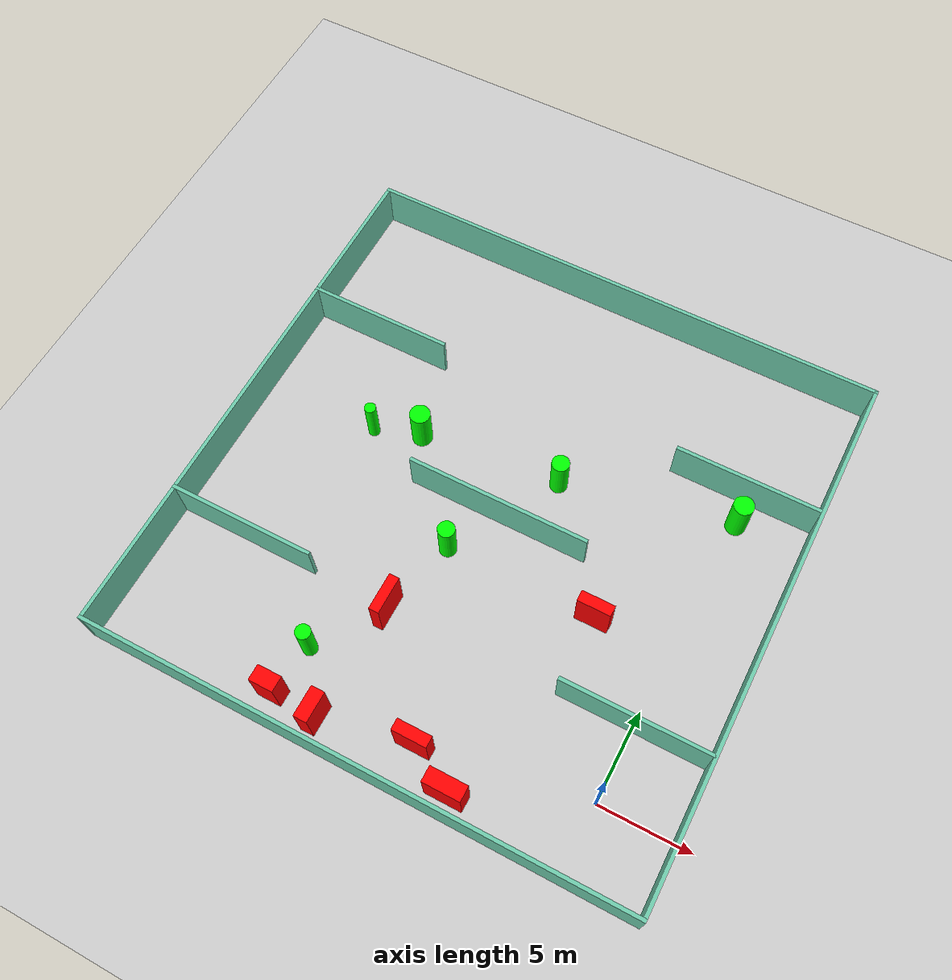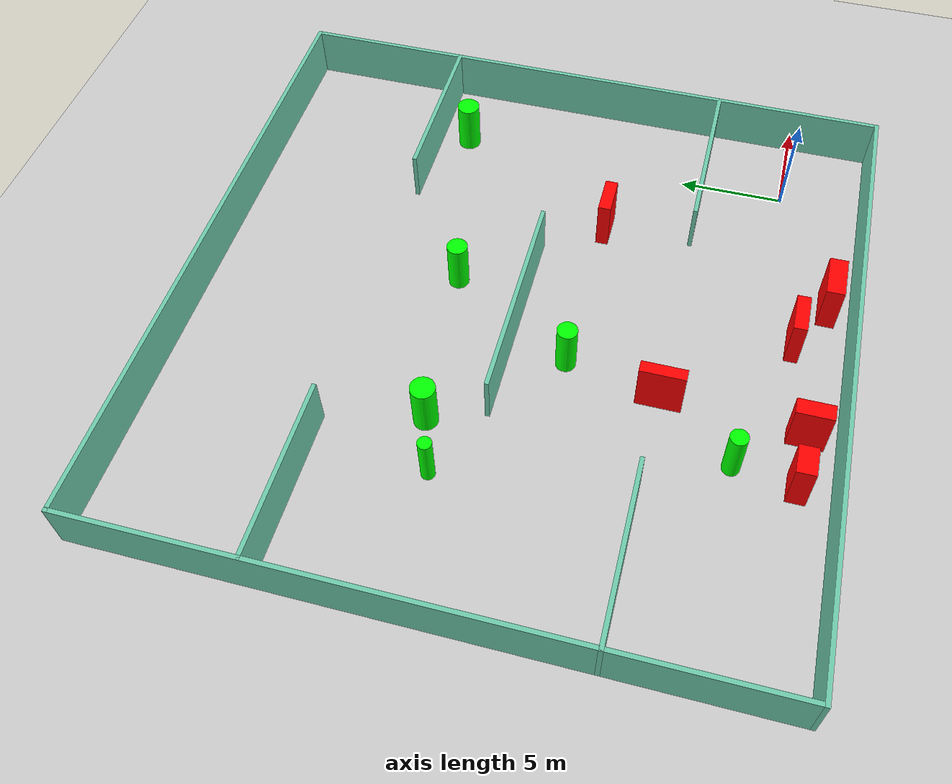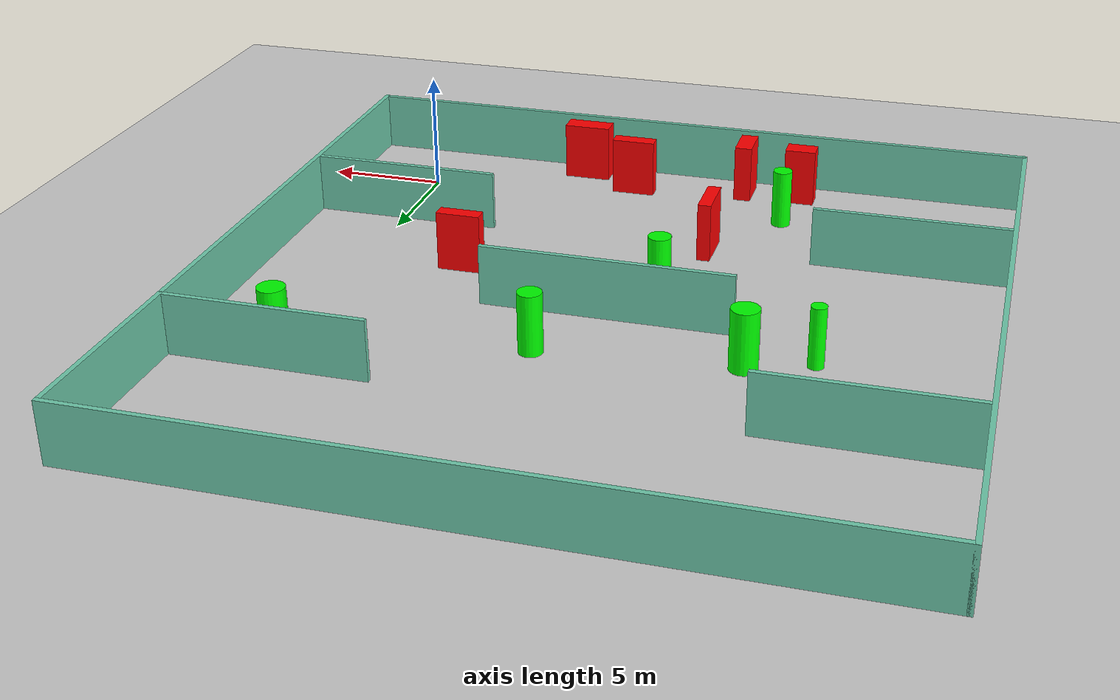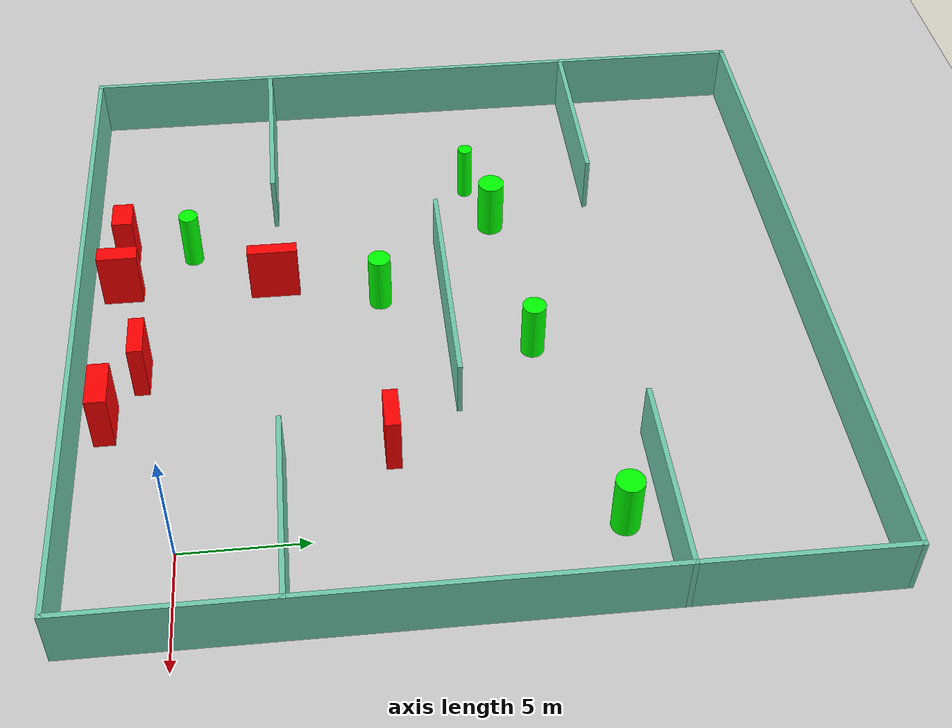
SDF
<sdf version="1.7">
 <world name="default">
  <light name="sun" type="directional">
   <pose>0 0 10 0 -0 0</pose>
   <diffuse>0.8 0.8 0.8 1</diffuse>
   <specular>0.2 0.2 0.2 1</specular>
   <attenuation>
    <range>1000</range>
    <constant>0.9</constant>
    <linear>0.01</linear>
    <quadratic>0.001</quadratic>
   </attenuation>
   <direction>-0.5 0.1 -0.9</direction>
   <spot><inner_angle>0</inner_angle><outer_angle>0</outer_angle><falloff>0</falloff></spot>
  </light>
  <model name="ground_plane">
   <static>1</static>
   <link name="link">
    <collision name="collision">
     <geometry><plane><normal>0 0 1</normal><size>100 100</size></plane></geometry>
     <surface>
      <contact><collide_bitmask>65535</collide_bitmask></contact>
      <friction><ode><mu>100</mu><mu2>50</mu2></ode></friction>
     </surface>
    </collision>
    <visual name="visual">
     <cast_shadows>0</cast_shadows>
     <geometry><plane><normal>0 0 1</normal><size>100 100</size></plane></geometry>
     <material>
      <script><uri>file://media/materials/scripts/gazebo.material</uri><name>Gazebo/Grey</name></script>
     </material>
    </visual>
   </link>
  </model>
  <gravity>0 0 -9.8</gravity>
  <magnetic_field>6e-06 2.3e-05 -4.2e-05</magnetic_field>
  <atmosphere type="adiabatic"/>
  <physics type="ode">
   <max_step_size>0.001</max_step_size>
   <real_time_factor>1</real_time_factor>
   <real_time_update_rate>1000</real_time_update_rate>
  </physics>
  <scene><ambient>0.4 0.4 0.4 1</ambient><background>0.7 0.7 0.7 1</background><shadows>1</shadows></scene>
  <spherical_coordinates>
   <surface_model>EARTH_WGS84</surface_model>
   <latitude_deg>0</latitude_deg>
   <longitude_deg>0</longitude_deg>
   <elevation>0</elevation>
   <heading_deg>0</heading_deg>
  </spherical_coordinates>
  <model name="my_base_walls">
   <link name="Wall_10">
    <collision name="Wall_10_Collision">
     <geometry><box><size>8.2 0.2 2.5</size></box></geometry>
     <pose>0 0 1.25 0 -0 0</pose>
    </collision>
    <visual name="Wall_10_Visual">
     <pose>0 0 1.25 0 -0 0</pose>
     <geometry><box><size>8.2 0.2 2.5</size></box></geometry>
     <material>
      <script><uri>file://media/materials/scripts/gazebo.material</uri><name>Gazebo/Grey</name></script>
      <ambient>0.435294 0.796078 0.67451 1</ambient>
     </material>
     <meta><layer>0</layer></meta>
    </visual>
    <pose>-11 -7 0 0 -0 0</pose>
   </link>
   <link name="Wall_12">
    <collision name="Wall_12_Collision">
     <geometry><box><size>8.2 0.2 2.5</size></box></geometry>
     <pose>0 0 1.25 0 -0 0</pose>
    </collision>
    <visual name="Wall_12_Visual">
     <pose>0 0 1.25 0 -0 0</pose>
     <geometry><box><size>8.2 0.2 2.5</size></box></geometry>
     <material>
      <script><uri>file://media/materials/scripts/gazebo.material</uri><name>Gazebo/Grey</name></script>
      <ambient>0.435294 0.796078 0.67451 1</ambient>
     </material>
     <meta><layer>0</layer></meta>
    </visual>
    <pose>-11 7 0 0 -0 0</pose>
   </link>
   <link name="Wall_14">
    <collision name="Wall_14_Collision">
     <geometry><box><size>8.2 0.2 2.5</size></box></geometry>
     <pose>0 0 1.25 0 -0 0</pose>
    </collision>
    <visual name="Wall_14_Visual">
     <pose>0 0 1.25 0 -0 0</pose>
     <geometry><box><size>8.2 0.2 2.5</size></box></geometry>
     <material>
      <script><uri>file://media/materials/scripts/gazebo.material</uri><name>Gazebo/Grey</name></script>
      <ambient>0.435294 0.796078 0.67451 1</ambient>
     </material>
     <meta><layer>0</layer></meta>
    </visual>
    <pose>11 7 0 0 -0 3.14159</pose>
   </link>
   <link name="Wall_16">
    <collision name="Wall_16_Collision">
     <geometry><box><size>10.2 0.2 2.5</size></box></geometry>
     <pose>0 0 1.25 0 -0 0</pose>
    </collision>
    <visual name="Wall_16_Visual">
     <pose>0 0 1.25 0 -0 0</pose>
     <geometry><box><size>10.2 0.2 2.5</size></box></geometry>
     <material>
      <script><uri>file://media/materials/scripts/gazebo.material</uri><name>Gazebo/Grey</name></script>
      <ambient>0.435294 0.796078 0.67451 1</ambient>
     </material>
     <meta><layer>0</layer></meta>
    </visual>
    <pose>0 0 0 0 -0 3.14159</pose>
   </link>
   <link name="Wall_2">
    <collision name="Wall_2_Collision">
     <geometry><box><size>30.2 0.2 2.5</size></box></geometry>
     <pose>0 0 1.25 0 -0 0</pose>
    </collision>
    <visual name="Wall_2_Visual">
     <pose>0 0 1.25 0 -0 0</pose>
     <geometry><box><size>30.2 0.2 2.5</size></box></geometry>
     <material>
      <script><uri>file://media/materials/scripts/gazebo.material</uri><name>Gazebo/Grey</name></script>
      <ambient>0.435294 0.796078 0.67451 1</ambient>
     </material>
     <meta><layer>0</layer></meta>
    </visual>
    <pose>0 -15 0 0 -0 3.14159</pose>
   </link>
   <link name="Wall_3">
    <collision name="Wall_3_Collision">
     <geometry><box><size>30.2 0.2 2.5</size></box></geometry>
     <pose>0 0 1.25 0 -0 0</pose>
    </collision>
    <visual name="Wall_3_Visual">
     <pose>0 0 1.25 0 -0 0</pose>
     <geometry><box><size>30.2 0.2 2.5</size></box></geometry>
     <material>
      <script><uri>file://media/materials/scripts/gazebo.material</uri><name>Gazebo/Grey</name></script>
      <ambient>0.435294 0.796078 0.67451 1</ambient>
     </material>
     <meta><layer>0</layer></meta>
    </visual>
    <pose>-15 0 0 0 -0 1.5708</pose>
   </link>
   <link name="Wall_4">
    <collision name="Wall_4_Collision">
     <geometry><box><size>30.2 0.2 2.5</size></box></geometry>
     <pose>0 0 1.25 0 -0 0</pose>
    </collision>
    <visual name="Wall_4_Visual">
     <pose>0 0 1.25 0 -0 0</pose>
     <geometry><box><size>30.2 0.2 2.5</size></box></geometry>
     <material>
      <script><uri>file://media/materials/scripts/gazebo.material</uri><name>Gazebo/Grey</name></script>
      <ambient>0.435294 0.796078 0.67451 1</ambient>
     </material>
     <meta><layer>0</layer></meta>
    </visual>
    <pose>0 15 0 0 -0 0</pose>
   </link>
   <link name="Wall_6">
    <collision name="Wall_6_Collision">
     <geometry><box><size>30.2 0.2 2.5</size></box></geometry>
     <pose>0 0 1.25 0 -0 0</pose>
    </collision>
    <visual name="Wall_6_Visual">
     <pose>0 0 1.25 0 -0 0</pose>
     <geometry><box><size>30.2 0.2 2.5</size></box></geometry>
     <material>
      <script><uri>file://media/materials/scripts/gazebo.material</uri><name>Gazebo/Grey</name></script>
      <ambient>0.435294 0.796078 0.67451 1</ambient>
     </material>
     <meta><layer>0</layer></meta>
    </visual>
    <pose>15 0 0 0 -0 1.5708</pose>
   </link>
   <link name="Wall_8">
    <collision name="Wall_8_Collision">
     <geometry><box><size>8.2 0.2 2.5</size></box></geometry>
     <pose>0 0 1.25 0 -0 0</pose>
    </collision>
    <visual name="Wall_8_Visual">
     <pose>0 0 1.25 0 -0 0</pose>
     <geometry><box><size>8.2 0.2 2.5</size></box></geometry>
     <material>
      <script><uri>file://media/materials/scripts/gazebo.material</uri><name>Gazebo/Grey</name></script>
      <ambient>0.435294 0.796078 0.67451 1</ambient>
     </material>
     <meta><layer>0</layer></meta>
    </visual>
    <pose>11 -7 0 0 -0 3.14159</pose>
   </link>
   <static>1</static>
   <pose>-11 11 0 0 -0 0</pose>
  </model>
  <model name="cylinder1">
   <static>1</static>
   <link name="link">
    <inertial>
     <mass>1</mass>
     <inertia><ixx>0.5</ixx><ixy>0</ixy><ixz>0</ixz><iyy>0.5</iyy><iyz>0</iyz><izz>1</izz></inertia>
    </inertial>
    <collision name="collision">
     <geometry><cylinder><radius>0.5615545492904462</radius><length>2.5</length></cylinder></geometry>
    </collision>
    <visual name="visual">
     <geometry><cylinder><radius>0.5615545492904462</radius><length>2.5</length></cylinder></geometry>
     <material>
      <ambient>0 1 0 1</ambient>
      <diffuse>0 1 0 1</diffuse>
      <specular>0.1 0.1 0.1 1</specular>
      <emissive>0 0 0 0</emissive>
     </material>
    </visual>
   </link>
   <pose>-16.945231135816613 13.540799059531636 1.25 0 0 0</pose>
  </model>
  <model name="cylinder2">
   <static>1</static>
   <link name="link">
    <inertial>
     <mass>1</mass>
     <inertia><ixx>0.5</ixx><ixy>0</ixy><ixz>0</ixz><iyy>0.5</iyy><iyz>0</iyz><izz>1</izz></inertia>
    </inertial>
    <collision name="collision">
     <geometry><cylinder><radius>0.4065628797259667</radius><length>2.5</length></cylinder></geometry>
    </collision>
    <visual name="visual">
     <geometry><cylinder><radius>0.4065628797259667</radius><length>2.5</length></cylinder></geometry>
     <material>
      <ambient>0 1 0 1</ambient>
      <diffuse>0 1 0 1</diffuse>
      <specular>0.1 0.1 0.1 1</specular>
      <emissive>0 0 0 0</emissive>
     </material>
    </visual>
   </link>
   <pose>-16.024538373581684 0.3513216127595493 1.25 0 0 0</pose>
  </model>
  <model name="cylinder3">
   <static>1</static>
   <link name="link">
    <inertial>
     <mass>1</mass>
     <inertia><ixx>0.5</ixx><ixy>0</ixy><ixz>0</ixz><iyy>0.5</iyy><iyz>0</iyz><izz>1</izz></inertia>
    </inertial>
    <collision name="collision">
     <geometry><cylinder><radius>0.4848082042656221</radius><length>2.5</length></cylinder></geometry>
    </collision>
    <visual name="visual">
     <geometry><cylinder><radius>0.4848082042656221</radius><length>2.5</length></cylinder></geometry>
     <material>
      <ambient>0 1 0 1</ambient>
      <diffuse>0 1 0 1</diffuse>
      <specular>0.1 0.1 0.1 1</specular>
      <emissive>0 0 0 0</emissive>
     </material>
    </visual>
   </link>
   <pose>-9.04425379225587 14.343044450150959 1.25 0 0 0</pose>
  </model>
  <model name="cylinder4">
   <static>1</static>
   <link name="link">
    <inertial>
     <mass>1</mass>
     <inertia><ixx>0.5</ixx><ixy>0</ixy><ixz>0</ixz><iyy>0.5</iyy><iyz>0</iyz><izz>1</izz></inertia>
    </inertial>
    <collision name="collision">
     <geometry><cylinder><radius>0.47062665699786954</radius><length>2.5</length></cylinder></geometry>
    </collision>
    <visual name="visual">
     <geometry><cylinder><radius>0.47062665699786954</radius><length>2.5</length></cylinder></geometry>
     <material>
      <ambient>0 1 0 1</ambient>
      <diffuse>0 1 0 1</diffuse>
      <specular>0.1 0.1 0.1 1</specular>
      <emissive>0 0 0 0</emissive>
     </material>
    </visual>
   </link>
   <pose>-12.501130467358418 8.319314031813217 1.25 0 0 0</pose>
  </model>
  <model name="cylinder5">
   <static>1</static>
   <link name="link">
    <inertial>
     <mass>1</mass>
     <inertia><ixx>0.5</ixx><ixy>0</ixy><ixz>0</ixz><iyy>0.5</iyy><iyz>0</iyz><izz>1</izz></inertia>
    </inertial>
    <collision name="collision">
     <geometry><cylinder><radius>0.5514468145064675</radius><length>2.5</length></cylinder></geometry>
    </collision>
    <visual name="visual">
     <geometry><cylinder><radius>0.5514468145064675</radius><length>2.5</length></cylinder></geometry>
     <material>
      <ambient>0 1 0 1</ambient>
      <diffuse>0 1 0 1</diffuse>
      <specular>0.1 0.1 0.1 1</specular>
      <emissive>0 0 0 0</emissive>
     </material>
    </visual>
   </link>
   <pose>0.2847691070978726 16.472004631570215 1.25 0 0 0</pose>
  </model>
  <model name="cylinder6">
   <static>1</static>
   <link name="link">
    <inertial>
     <mass>1</mass>
     <inertia><ixx>0.5</ixx><ixy>0</ixy><ixz>0</ixz><iyy>0.5</iyy><iyz>0</iyz><izz>1</izz></inertia>
    </inertial>
    <collision name="collision">
     <geometry><cylinder><radius>0.31540280380999236</radius><length>2.5</length></cylinder></geometry>
    </collision>
    <visual name="visual">
     <geometry><cylinder><radius>0.31540280380999236</radius><length>2.5</length></cylinder></geometry>
     <material>
      <ambient>0 1 0 1</ambient>
      <diffuse>0 1 0 1</diffuse>
      <specular>0.1 0.1 0.1 1</specular>
      <emissive>0 0 0 0</emissive>
     </material>
    </visual>
   </link>
   <pose>-19.477846633118364 12.661823233426773 1.25 0 0 0</pose>
  </model>
  <model name="box1">
   <static>1</static>
   <link name="link">
    <inertial>
     <mass>1</mass>
     <inertia><ixx>0.083</ixx><ixy>0</ixy><ixz>0</ixz><iyy>0.083</iyy><iyz>0</iyz><izz>0.083</izz></inertia>
    </inertial>
    <collision name="collision">
     <geometry><box><size>0.55231868629509 2.0738426010248707 2.5</size></box></geometry>
    </collision>
    <visual name="visual">
     <geometry><box><size>0.55231868629509 2.0738426010248707 2.5</size></box></geometry>
     <material>
      <ambient>1 0 0 1</ambient>
      <diffuse>1 0 0 1</diffuse>
      <specular>0.1 0.1 0.1 1</specular>
      <emissive>0 0 0 0</emissive>
     </material>
    </visual>
    <sensor name="my_contact" type="contact">
     <contact><collision>box_collision</collision><topic>__default_topic__</topic></contact>
    </sensor>
   </link>
   <pose>-13.553636031007665 3.886390791358128 1.25 0 0 0</pose>
  </model>
  <model name="box2">
   <static>1</static>
   <link name="link">
    <inertial>
     <mass>1</mass>
     <inertia><ixx>0.083</ixx><ixy>0</ixy><ixz>0</ixz><iyy>0.083</iyy><iyz>0</iyz><izz>0.083</izz></inertia>
    </inertial>
    <collision name="collision">
     <geometry><box><size>2.034494908816974 0.846028204551112 2.5</size></box></geometry>
    </collision>
    <visual name="visual">
     <geometry><box><size>2.034494908816974 0.846028204551112 2.5</size></box></geometry>
     <material>
      <ambient>1 0 0 1</ambient>
      <diffuse>1 0 0 1</diffuse>
      <specular>0.1 0.1 0.1 1</specular>
      <emissive>0 0 0 0</emissive>
     </material>
    </visual>
    <sensor name="my_contact" type="contact">
     <contact><collision>box_collision</collision><topic>__default_topic__</topic></contact>
    </sensor>
   </link>
   <pose>-6.463283986461908 -2.8581130863883693 1.25 0 0 0</pose>
  </model>
  <model name="box3">
   <static>1</static>
   <link name="link">
    <inertial>
     <mass>1</mass>
     <inertia><ixx>0.083</ixx><ixy>0</ixy><ixz>0</ixz><iyy>0.083</iyy><iyz>0</iyz><izz>0.083</izz></inertia>
    </inertial>
    <collision name="collision">
     <geometry><box><size>1.8810030439334886 0.6244326103412072 2.5</size></box></geometry>
    </collision>
    <visual name="visual">
     <geometry><box><size>1.8810030439334886 0.6244326103412072 2.5</size></box></geometry>
     <material>
      <ambient>1 0 0 1</ambient>
      <diffuse>1 0 0 1</diffuse>
      <specular>0.1 0.1 0.1 1</specular>
      <emissive>0 0 0 0</emissive>
     </material>
    </visual>
    <sensor name="my_contact" type="contact">
     <contact><collision>box_collision</collision><topic>__default_topic__</topic></contact>
    </sensor>
   </link>
   <pose>-8.949492484140267 -1.5239166770690882 1.25 0 0 0</pose>
  </model>
  <model name="box4">
   <static>1</static>
   <link name="link">
    <inertial>
     <mass>1</mass>
     <inertia><ixx>0.083</ixx><ixy>0</ixy><ixz>0</ixz><iyy>0.083</iyy><iyz>0</iyz><izz>0.083</izz></inertia>
    </inertial>
    <collision name="collision">
     <geometry><box><size>1.82542044704394 0.5999357024713239 2.5</size></box></geometry>
    </collision>
    <visual name="visual">
     <geometry><box><size>1.82542044704394 0.5999357024713239 2.5</size></box></geometry>
     <material>
      <ambient>1 0 0 1</ambient>
      <diffuse>1 0 0 1</diffuse>
      <specular>0.1 0.1 0.1 1</specular>
      <emissive>0 0 0 0</emissive>
     </material>
    </visual>
    <sensor name="my_contact" type="contact">
     <contact><collision>box_collision</collision><topic>__default_topic__</topic></contact>
    </sensor>
   </link>
   <pose>-4.107070006523863 8.22176609655598 1.25 0 0 0</pose>
  </model>
  <model name="box5">
   <static>1</static>
   <link name="link">
    <inertial>
     <mass>1</mass>
     <inertia><ixx>0.083</ixx><ixy>0</ixy><ixz>0</ixz><iyy>0.083</iyy><iyz>0</iyz><izz>0.083</izz></inertia>
    </inertial>
    <collision name="collision">
     <geometry><box><size>1.3294875576530842 0.8637804036000979 2.5</size></box></geometry>
    </collision>
    <visual name="visual">
     <geometry><box><size>1.3294875576530842 0.8637804036000979 2.5</size></box></geometry>
     <material>
      <ambient>1 0 0 1</ambient>
      <diffuse>1 0 0 1</diffuse>
      <specular>0.1 0.1 0.1 1</specular>
      <emissive>0 0 0 0</emissive>
     </material>
    </visual>
    <sensor name="my_contact" type="contact">
     <contact><collision>box_collision</collision><topic>__default_topic__</topic></contact>
    </sensor>
   </link>
   <pose>-16.392366924277596 -2.4450517162327667 1.25 0 0 0</pose>
  </model>
  <model name="box6">
   <static>1</static>
   <link name="link">
    <inertial>
     <mass>1</mass>
     <inertia><ixx>0.083</ixx><ixy>0</ixy><ixz>0</ixz><iyy>0.083</iyy><iyz>0</iyz><izz>0.083</izz></inertia>
    </inertial>
    <collision name="collision">
     <geometry><box><size>0.7406140595209756 1.6584130067969916 2.5</size></box></geometry>
    </collision>
    <visual name="visual">
     <geometry><box><size>0.7406140595209756 1.6584130067969916 2.5</size></box></geometry>
     <material>
      <ambient>1 0 0 1</ambient>
      <diffuse>1 0 0 1</diffuse>
      <specular>0.1 0.1 0.1 1</specular>
      <emissive>0 0 0 0</emissive>
     </material>
    </visual>
    <sensor name="my_contact" type="contact">
     <contact><collision>box_collision</collision><topic>__default_topic__</topic></contact>
    </sensor>
   </link>
   <pose>-13.886849513120483 -2.552734586193554 1.25 0 0 0</pose>
  </model>
 </world>
</sdf>
